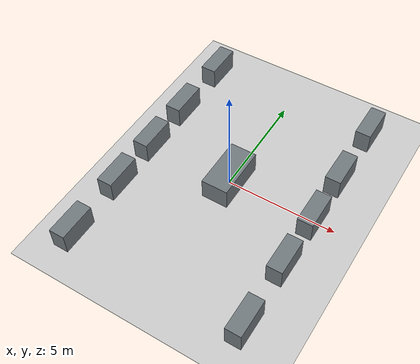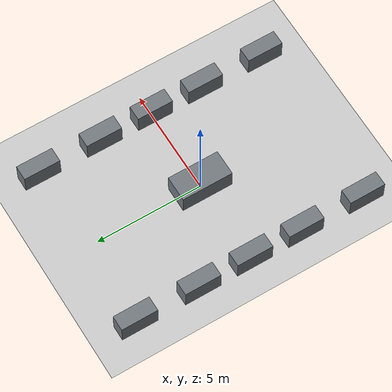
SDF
<?xml version="1.0" ?>
<sdf version="1.10">
  <world name="warehouse_small">
    <physics name="1ms" type="ignored">
      <max_step_size>0.001</max_step_size>
      <real_time_factor>1.0</real_time_factor>
    </physics>
    <plugin filename="gz-sim-physics-system" name="gz::sim::systems::Physics"/>
    <plugin filename="gz-sim-user-commands-system" name="gz::sim::systems::UserCommands"/>
    <plugin filename="gz-sim-scene-broadcaster-system" name="gz::sim::systems::SceneBroadcaster"/>
    <light name="sun" type="directional">
      <pose>0 0 10 0 0 0</pose>
      <diffuse>0.8 0.8 0.8 1</diffuse>
      <specular>0.2 0.2 0.2 1</specular>
      <direction>-0.5 0.1 -0.9</direction>
    </light>
    <model name="ground_plane">
      <static>true</static>
      <link name="link">
        <collision name="collision"><geometry><plane><normal>0 0 1</normal><size>30 30</size></plane></geometry></collision>
        <visual name="visual"><geometry><plane><normal>0 0 1</normal><size>30 30</size></plane></geometry></visual>
      </link>
    </model>

    <model name="shelf_left_0">
      <static>true</static>
      <pose>-4.000 -5.500 0.500 0 0 0</pose>
      <link name="link">
        <collision name="collision">
          <geometry><box><size>0.700 1.700 1.000</size></box></geometry>
        </collision>
        <visual name="visual">
          <geometry><box><size>0.700 1.700 1.000</size></box></geometry>
          <material><ambient>0.45 0.48 0.50 1</ambient><diffuse>0.45 0.48 0.50 1</diffuse></material>
        </visual>
      </link>
    </model>
    <model name="shelf_right_0">
      <static>true</static>
      <pose>4.000 -5.500 0.500 0 0 0</pose>
      <link name="link">
        <collision name="collision">
          <geometry><box><size>0.700 1.700 1.000</size></box></geometry>
        </collision>
        <visual name="visual">
          <geometry><box><size>0.700 1.700 1.000</size></box></geometry>
          <material><ambient>0.45 0.48 0.50 1</ambient><diffuse>0.45 0.48 0.50 1</diffuse></material>
        </visual>
      </link>
    </model>
    <model name="shelf_left_1">
      <static>true</static>
      <pose>-4.000 -2.500 0.500 0 0 0</pose>
      <link name="link">
        <collision name="collision">
          <geometry><box><size>0.700 1.700 1.000</size></box></geometry>
        </collision>
        <visual name="visual">
          <geometry><box><size>0.700 1.700 1.000</size></box></geometry>
          <material><ambient>0.45 0.48 0.50 1</ambient><diffuse>0.45 0.48 0.50 1</diffuse></material>
        </visual>
      </link>
    </model>
    <model name="shelf_right_1">
      <static>true</static>
      <pose>4.000 -2.500 0.500 0 0 0</pose>
      <link name="link">
        <collision name="collision">
          <geometry><box><size>0.700 1.700 1.000</size></box></geometry>
        </collision>
        <visual name="visual">
          <geometry><box><size>0.700 1.700 1.000</size></box></geometry>
          <material><ambient>0.45 0.48 0.50 1</ambient><diffuse>0.45 0.48 0.50 1</diffuse></material>
        </visual>
      </link>
    </model>
    <model name="shelf_left_2">
      <static>true</static>
      <pose>-4.000 0.000 0.500 0 0 0</pose>
      <link name="link">
        <collision name="collision">
          <geometry><box><size>0.700 1.700 1.000</size></box></geometry>
        </collision>
        <visual name="visual">
          <geometry><box><size>0.700 1.700 1.000</size></box></geometry>
          <material><ambient>0.45 0.48 0.50 1</ambient><diffuse>0.45 0.48 0.50 1</diffuse></material>
        </visual>
      </link>
    </model>
    <model name="shelf_right_2">
      <static>true</static>
      <pose>4.000 0.000 0.500 0 0 0</pose>
      <link name="link">
        <collision name="collision">
          <geometry><box><size>0.700 1.700 1.000</size></box></geometry>
        </collision>
        <visual name="visual">
          <geometry><box><size>0.700 1.700 1.000</size></box></geometry>
          <material><ambient>0.45 0.48 0.50 1</ambient><diffuse>0.45 0.48 0.50 1</diffuse></material>
        </visual>
      </link>
    </model>
    <model name="shelf_left_3">
      <static>true</static>
      <pose>-4.000 2.500 0.500 0 0 0</pose>
      <link name="link">
        <collision name="collision">
          <geometry><box><size>0.700 1.700 1.000</size></box></geometry>
        </collision>
        <visual name="visual">
          <geometry><box><size>0.700 1.700 1.000</size></box></geometry>
          <material><ambient>0.45 0.48 0.50 1</ambient><diffuse>0.45 0.48 0.50 1</diffuse></material>
        </visual>
      </link>
    </model>
    <model name="shelf_right_3">
      <static>true</static>
      <pose>4.000 2.500 0.500 0 0 0</pose>
      <link name="link">
        <collision name="collision">
          <geometry><box><size>0.700 1.700 1.000</size></box></geometry>
        </collision>
        <visual name="visual">
          <geometry><box><size>0.700 1.700 1.000</size></box></geometry>
          <material><ambient>0.45 0.48 0.50 1</ambient><diffuse>0.45 0.48 0.50 1</diffuse></material>
        </visual>
      </link>
    </model>
    <model name="shelf_left_4">
      <static>true</static>
      <pose>-4.000 5.500 0.500 0 0 0</pose>
      <link name="link">
        <collision name="collision">
          <geometry><box><size>0.700 1.700 1.000</size></box></geometry>
        </collision>
        <visual name="visual">
          <geometry><box><size>0.700 1.700 1.000</size></box></geometry>
          <material><ambient>0.45 0.48 0.50 1</ambient><diffuse>0.45 0.48 0.50 1</diffuse></material>
        </visual>
      </link>
    </model>
    <model name="shelf_right_4">
      <static>true</static>
      <pose>4.000 5.500 0.500 0 0 0</pose>
      <link name="link">
        <collision name="collision">
          <geometry><box><size>0.700 1.700 1.000</size></box></geometry>
        </collision>
        <visual name="visual">
          <geometry><box><size>0.700 1.700 1.000</size></box></geometry>
          <material><ambient>0.45 0.48 0.50 1</ambient><diffuse>0.45 0.48 0.50 1</diffuse></material>
        </visual>
      </link>
    </model>
    <model name="center_island">
      <static>true</static>
      <pose>0.000 0.000 0.500 0 0 0</pose>
      <link name="link">
        <collision name="collision">
          <geometry><box><size>1.200 2.400 1.000</size></box></geometry>
        </collision>
        <visual name="visual">
          <geometry><box><size>1.200 2.400 1.000</size></box></geometry>
          <material><ambient>0.45 0.48 0.50 1</ambient><diffuse>0.45 0.48 0.50 1</diffuse></material>
        </visual>
      </link>
    </model>
  </world>
</sdf>
